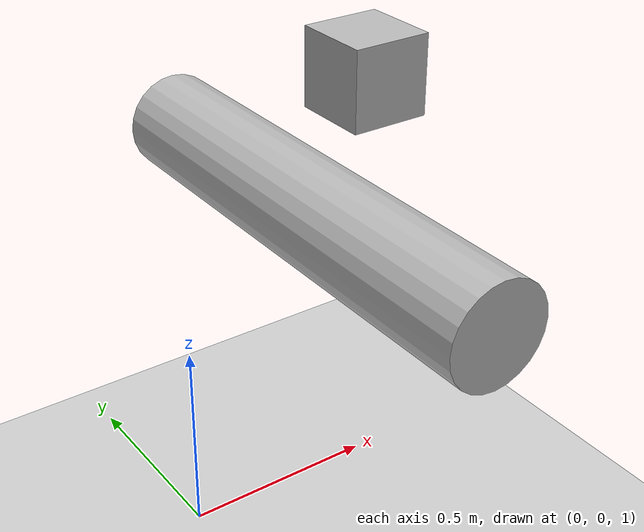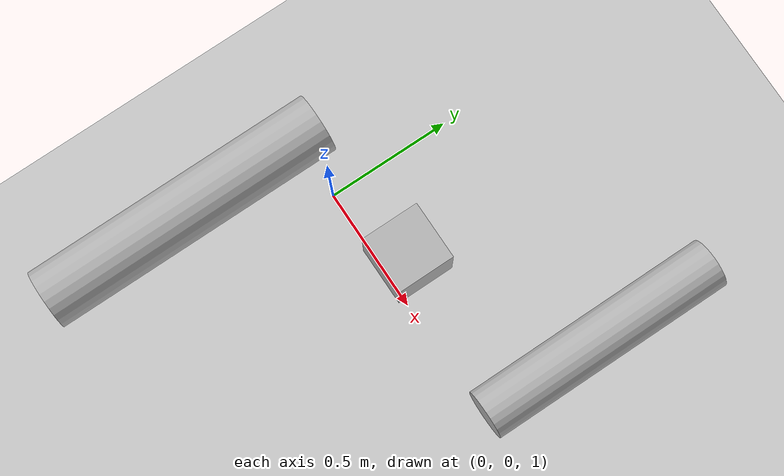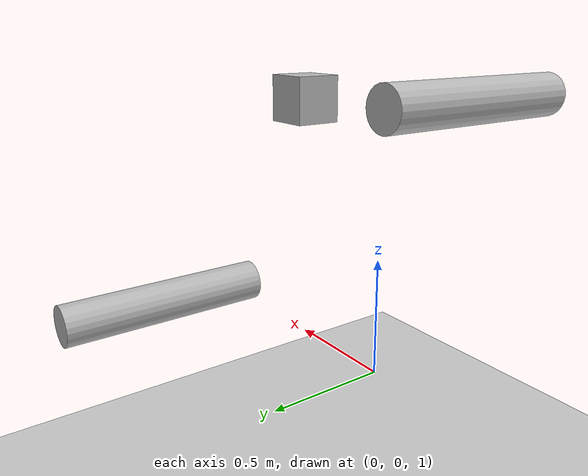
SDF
<?xml version="1.0" ?>
<sdf version="1.4">
  <world name="default">
    <!-- A global light source -->
    <include>
      <uri>model://sun</uri>
    </include>
    <!-- A ground plane -->
    <include>
      <uri>model://ground_plane</uri>
    </include>

    <physics type="ode">
        <gravity>0.000000 0.000000 0.00000</gravity>
        <max_step_size>0.000100</max_step_size>
        <ode>
            <solver>
                <type>quick</type>
                <iters>100</iters>
                <precon_iters>0</precon_iters>
                <sor>1.300000</sor>
            </solver>
            <constraints>
                <cfm>0.000000</cfm>
                <erp>1.000000</erp>
                <contact_max_correcting_vel>0.000000</contact_max_correcting_vel>
                <contact_surface_layer>0.000000</contact_surface_layer>
            </constraints>
        </ode>
        <real_time_update_rate>0.000000</real_time_update_rate>
    </physics>

    <model name="model_1">
        <pose>0.000000 0.000000 2.100000 -1.57079 -0.000000 0.000000</pose>
        <link name="link_1">
            <pose>0.000000 0.000000 0.000000 0.000000 -0.000000 0.000000</pose>
            <inertial>
                <pose>0.000000 0.000000 -0.500000 0.000000 -0.000000 0.000000</pose>
                <inertia>
                    <ixx>1.000000</ixx>
                    <ixy>0.000000</ixy>
                    <ixz>0.000000</ixz>
                    <iyy>1.000000</iyy>
                    <iyz>0.000000</iyz>
                    <izz>1.000000</izz>
                </inertia>
                <mass>10.000000</mass>
            </inertial>
            <visual name="visual_cylinder">
                <pose>0.000000 0.000000 -0.500000 0.000000 -0.000000 0.000000</pose>
                <geometry>
                    <cylinder>
                        <radius>0.100000</radius>
                        <length>1.000000</length>
                    </cylinder>
                </geometry>
                <material>
                    <script>Gazebo/Green</script>
                </material>
                <cast_shadows>1</cast_shadows>
                <laser_retro>100.000000</laser_retro>
                <transparency>0.000000</transparency>
            </visual>
            <collision name="collision_cylinder">
                <pose>0.000000 0.000000 -0.500000 0.000000 -0.000000 0.000000</pose>
                <max_contacts>250</max_contacts>
                <geometry>
                    <cylinder>
                        <radius>0.100000</radius>
                        <length>1.000000</length>
                    </cylinder>
                </geometry>
            </collision>
            <gravity>1</gravity>
            <self_collide>1</self_collide>
            <kinematic>0</kinematic>
        </link>
        <link name="link_2">
            <pose>0.500000 0.000000 0.000000 0.000000 -0.000000 0.000000</pose>
            <inertial>
                <pose>0.000000 0.000000 -0.500000 0.000000 -0.000000 0.000000</pose>
                <inertia>
                    <ixx>1.000000</ixx>
                    <ixy>0.000000</ixy>
                    <ixz>0.000000</ixz>
                    <iyy>1.000000</iyy>
                    <iyz>0.000000</iyz>
                    <izz>1.000000</izz>
                </inertia>
                <mass>10.000000</mass>
            </inertial>
            <visual name="visual_cylinder">
                <pose>0.000000 0.000000 0.000000 0.000000 -0.000000 0.000000</pose>
                <geometry>
                    <box>
                        <size>0.2 0.2 0.2</size>
                    </box>
                </geometry>
                <material>
                    <script>Gazebo/Green</script>
                </material>
                <cast_shadows>1</cast_shadows>
                <laser_retro>100.000000</laser_retro>
                <transparency>0.000000</transparency>
            </visual>
            <collision name="collision_cylinder">
                <pose>0.000000 0.000000 0.000000 0.000000 -0.000000 0.000000</pose>
                <max_contacts>250</max_contacts>
                <geometry>
                    <box>
                        <size>0.2 0.2 0.2</size>
                    </box>
                </geometry>
            </collision>
            <gravity>1</gravity>
            <self_collide>1</self_collide>
            <kinematic>0</kinematic>
        </link>
        <link name="link_3">
            <pose>1.000000 1.000000 1.000000 0.000000 -0.000000 0.000000</pose>
            <inertial>
                <pose>0.000000 0.000000 -0.500000 0.000000 -0.000000 0.000000</pose>
                <inertia>
                    <ixx>1.000000</ixx>
                    <ixy>0.000000</ixy>
                    <ixz>0.000000</ixz>
                    <iyy>1.000000</iyy>
                    <iyz>0.000000</iyz>
                    <izz>1.000000</izz>
                </inertia>
                <mass>10.000000</mass>
            </inertial>
            <visual name="visual_cylinder">
                <pose>0.000000 0.000000 -0.500000 0.000000 -0.000000 0.000000</pose>
                <geometry>
                    <cylinder>
                        <radius>0.100000</radius>
                        <length>1.000000</length>
                    </cylinder>
                </geometry>
                <material>
                    <script>Gazebo/Green</script>
                </material>
                <cast_shadows>1</cast_shadows>
                <laser_retro>100.000000</laser_retro>
                <transparency>0.000000</transparency>
            </visual>
            <collision name="collision_cylinder">
                <pose>0.000000 0.000000 -0.500000 0.000000 -0.000000 0.000000</pose>
                <max_contacts>250</max_contacts>
                <geometry>
                    <cylinder>
                        <radius>0.100000</radius>
                        <length>1.000000</length>
                    </cylinder>
                </geometry>
            </collision>
            <gravity>1</gravity>
            <self_collide>1</self_collide>
            <kinematic>0</kinematic>
        </link>
        <joint name="joint_02" type="revolute">
            <parent>world</parent>
            <child>link_2</child>
            <axis>
              <xyz>1.000000 0.000000 0.000000</xyz>
              <limit>
                <upper>0</upper>
                <lower>0</lower>
              </limit>
            </axis>
        </joint>
        <joint name="joint_12" type="revolute">
            <parent>link_2</parent>
            <child>link_1</child>
            <axis>
              <xyz>1.000000 0.000000 0.000000</xyz>
            </axis>
        </joint>
        <joint name="joint_23" type="revolute">
            <parent>link_2</parent>
            <child>link_3</child>
            <axis>
              <xyz>1.000000 0.000000 0.000000</xyz>
              <dynamics>
                <damping>1.0</damping>
              </dynamics>
            </axis>
        </joint>
        <joint name="joint_13" type="gearbox">
            <parent>link_1</parent>
            <child>link_3</child>
            <gearbox_ratio>-5</gearbox_ratio>
            <gearbox_reference_body>link_2</gearbox_reference_body>
            <axis>
              <xyz>1.000000 0.000000 0.000000</xyz>
            </axis>
            <axis2>
              <xyz>1.000000 0.000000 0.000000</xyz>
            </axis2>
        </joint>
        <static>0</static>
        <plugin name="model_push" filename="libmodel_push.so"/>
    </model>
  </world>
</sdf>
